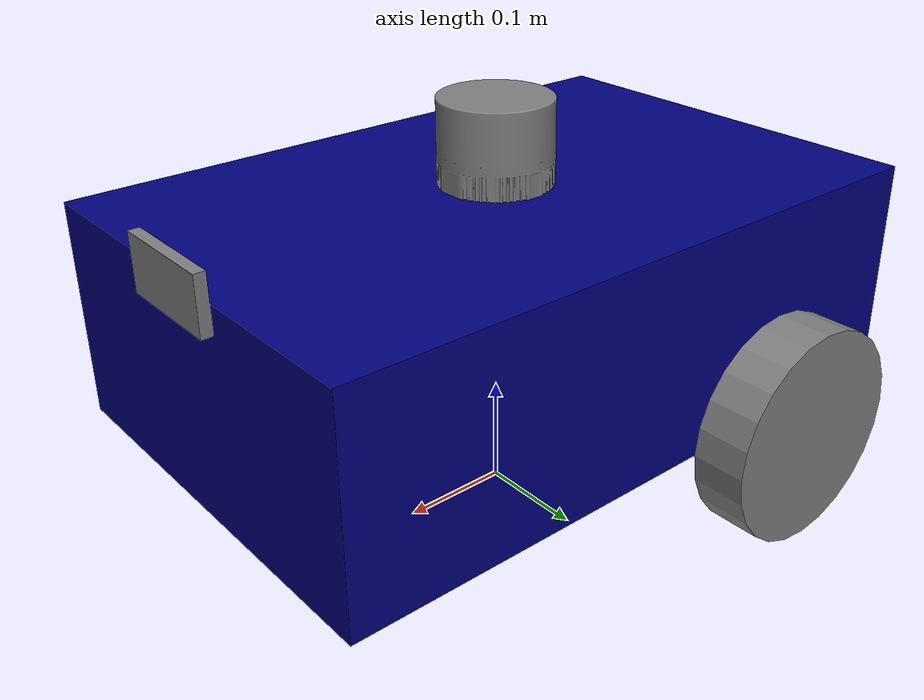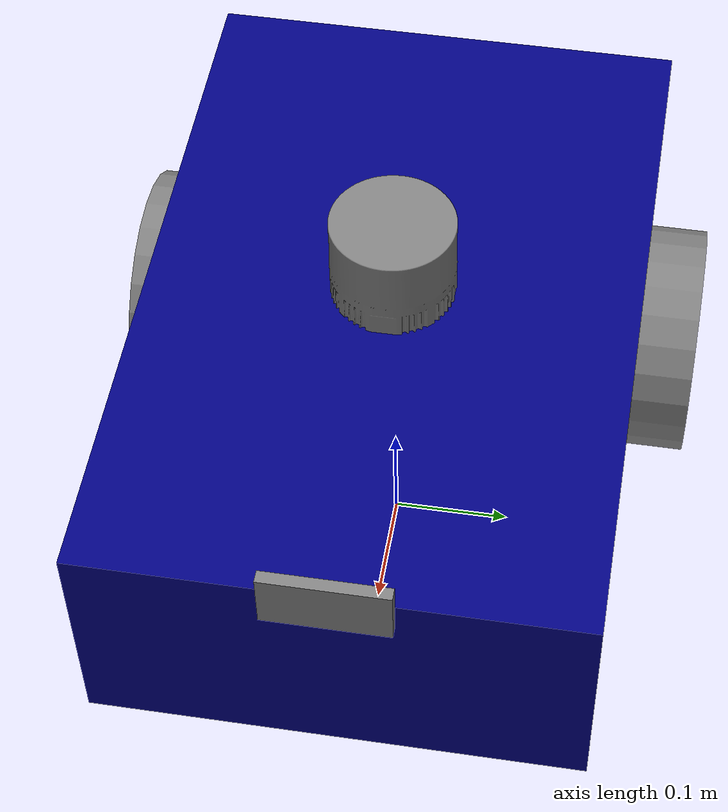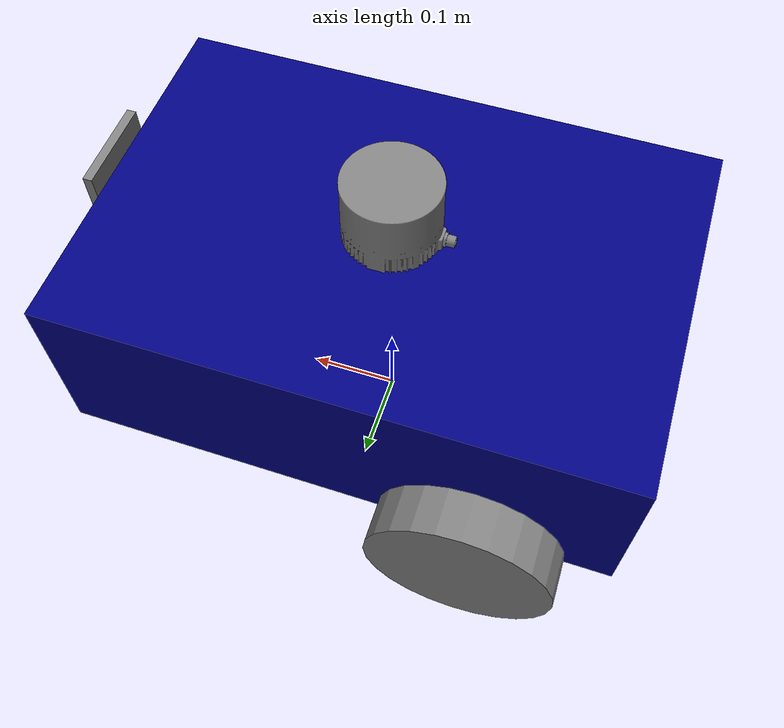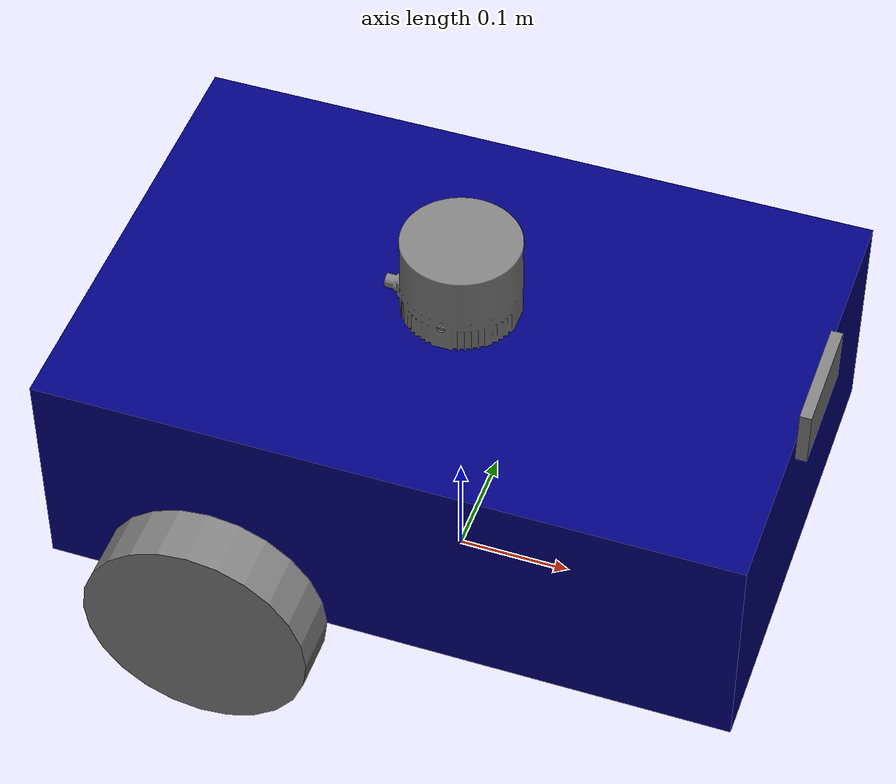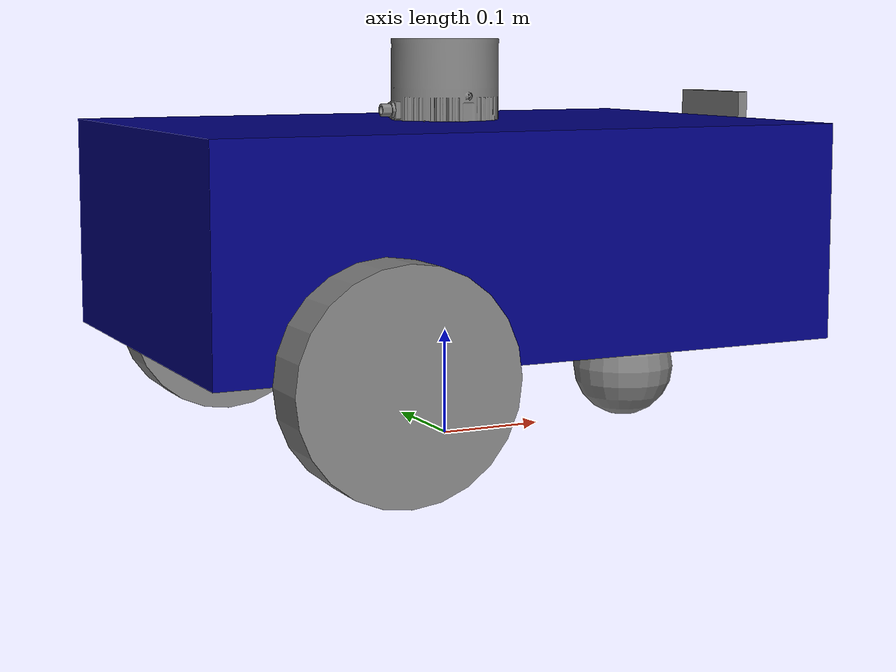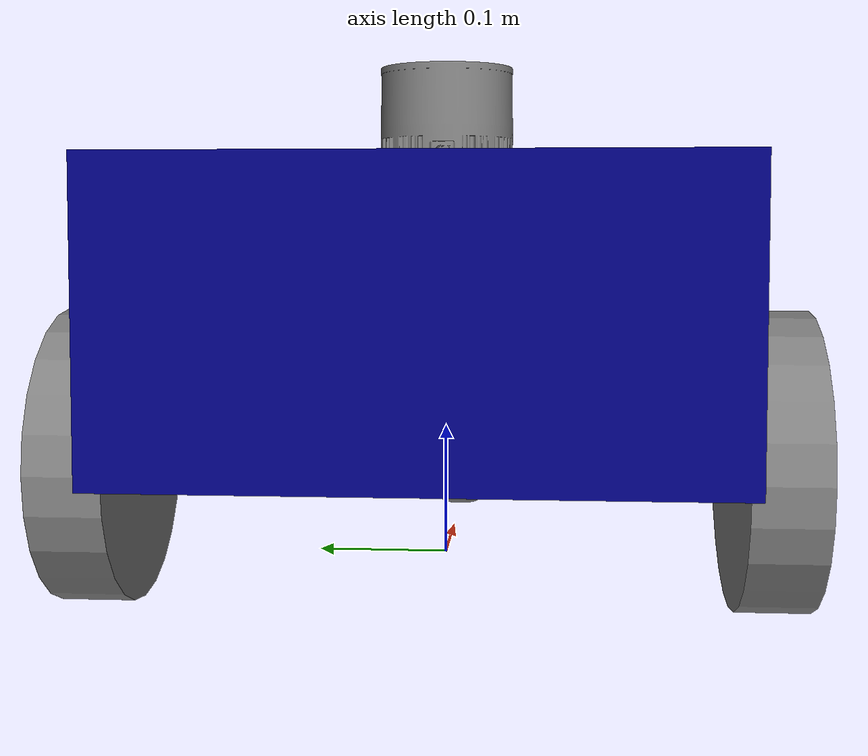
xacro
<?xml version="1.0"?>

<robot name="my_robot" xmlns:xacro="http://wwww.ros.org/wiki/xacro">

    <xacro:include filename="common_properties.xacro" />
    <xacro:include filename="mobile_base.xacro" />
    <xacro:include filename="mobile_base_gazebo.xacro" />
    <xacro:include filename="camera.xacro" />
    <xacro:include filename="lidar.xacro" />

</robot>

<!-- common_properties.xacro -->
<robot xmlns:xacro="http://www.ros.org/wiki/xacro" >

    <material name="blue">
        <color rgba="0 0 0.5 1" />
    </material>

    <material name="grey">
        <color rgba="0.5 0.5 0.5 1" />
    </material>

    <material name="orange">
        <color rgba="1.0 0.5 0 1" />
    </material>

    <material name="yellow" >
        <color rgba="1.0 1.0 0 1" />
    </material>

    <xacro:macro name="box_inertia" params="m l w h xyz rpy" >
        <inertial>
            <origin xyz="${xyz}" rpy="${rpy}"  />
            <mass value="${m}" />
            <inertia ixx="${(m/12)*(h*h + l*l)}" ixy="0" ixz="0"
                     iyy="${(m/12)*(w*w + h*h)}" iyz="0" izz="${(m/12)*(w*w + l*l)}" />
        </inertial>
    </xacro:macro>

    <xacro:macro name="wheel_inertia" params="m r h xyz rpy">
        <inertial>
            <origin xyz="${xyz}" rpy="${rpy}" />
            <mass value="${m}" />
            <inertia ixx="${(m/12)*(3*r*r + h*h)}" ixy="0" ixz="0"
                     iyy="${(m/12)*(3*r*r + h*h)}" iyz="0" izz="${((m*r*r)/2)}" />
        </inertial>
    </xacro:macro>

    <xacro:macro name="castor_wheel_inertia" params="m r xyz rpy">
        <inertial>
            <origin xyz="${xyz}" rpy="${rpy}" />
            <mass value="${m}" />
            <inertia ixx="${(2/5)*m*r*r}" ixy="0" ixz="0"
                     iyy="${(2/5)*m*r*r}" iyz="0" izz="${(2/5)*m*r*r}" />
        </inertial>
    </xacro:macro>

</robot>

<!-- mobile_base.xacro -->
<robot xmlns:xacro="http://www.ros.org/wiki/xacro" >

    <xacro:property name="base_length" value="0.6" />
    <xacro:property name="base_width" value="0.4" />
    <xacro:property name="base_height" value="0.2" />
    <xacro:property name="wheel_radius" value="0.1" />
    <xacro:property name="wheel_length" value="0.05" />
    <xacro:property name="scan_wheel_length" value="0.06" />
    <xacro:property name="imu_length" value="0.05" />

    <link name="base_footprint" />

    <!-- BASE LINK -->
    <link name="base_link">
        <visual>
            <geometry>
                <box size="${base_length} ${base_width} ${base_height}"/>
            </geometry>
            <origin xyz="0 0 0.1" rpy="0 0 0" />
            <material name="blue" />
        </visual>
        <collision>
            <geometry>
                <box size="${base_length} ${base_width} ${base_height}"/>
            </geometry>
            <origin xyz="0 0 0.1" rpy="0 0 0" />
        </collision>
        <xacro:box_inertia m="5.0" l="${3*base_length}" w="${3*base_width}" h="${3*base_height}"
                           xyz="0 0 0.1" rpy="0 0 0" />
    </link>

    <!-- DEFINE THE IMU LINK  -->
    <link name= "imu_link" >
        <visual>
            <geometry>
                <box size="0.05 0.05 0.05"/>
            </geometry>
            <origin xyz="0 0 0" rpy="0 0 0" />
            <material name="orange"/>
        </visual>
        <collision>
            <geometry>
                <box size="${imu_length} ${imu_length} ${imu_length}" />
            </geometry>
            <origin xyz="0 0 0.15   " rpy="0 0 0"/>
        </collision>
        <xacro:box_inertia m="0.25" l="${2*imu_length}" w="${2*imu_length}" h="${2*imu_length}"
                           xyz="0 0 0.1" rpy="0 0 0" />
    </link>

    <!-- To add Lidar JOint  -->

    <!-- WHEEL LINK -->
    <xacro:macro name="wheel_link" params="prefix">
        <link name="${prefix}_wheel_link">
            <visual>
                <geometry>
                    <cylinder radius="${wheel_radius}" length="${wheel_length}" />
                </geometry>
                <origin xyz="0 0 0" rpy="${pi / 2.0} 0 0" />
                <material name="grey" />
            </visual>
            <collision>
                <geometry>
                    <cylinder radius="${wheel_radius}" length="${wheel_length}" />
                </geometry>
                <origin xyz="0 0 0" rpy="${pi / 2.0} 0 0" />
            </collision>
            <xacro:wheel_inertia m="1.0" r="${3*wheel_radius}" h="${3*wheel_length}"
                                 xyz="0 0 0" rpy="${pi / 2.0} 0 0" />
        </link>
    </xacro:macro>

    <xacro:wheel_link prefix="right"/>
    <xacro:wheel_link prefix="left" />

    <link name="caster_wheel_link">
        <visual>
            <geometry>
                <sphere radius="${wheel_length}" />
            </geometry>
            <origin xyz="0 0 0" rpy="0 0 0"/>
            <material name="grey" />
        </visual>
        <collision>
            <geometry>
                <sphere radius="${wheel_length}" />
            </geometry>
            <origin xyz="0 0 0" rpy="0 0 0"/>
        </collision>
        <xacro:castor_wheel_inertia m="0.5" r="${3*wheel_length}"
                                    xyz="0 0 0" rpy="0 0 0" />
    </link>

    <joint name="base_joint" type="fixed">
        <parent link="base_footprint" />
        <child link="base_link" />
        <origin xyz="0 0 ${wheel_radius}" rpy="0 0 0" />
    </joint>

    <joint name="base_right_wheel_joint" type="continuous">
        <parent link="base_link" />
        <child link="right_wheel_link" />
        <origin xyz="${-base_length / 4.0} ${-(base_width + wheel_length) / 2.0} 0" rpy="0 0 0" />
        <axis xyz="0 1 0" />
    </joint>

    <joint name="base_left_wheel_joint" type="continuous">
        <parent link="base_link" />
        <child link="left_wheel_link" />
        <origin xyz="${-base_length / 4.0} ${(base_width + wheel_length) / 2.0} 0" rpy="0 0 0" />
        <axis xyz="0 1 0" />
    </joint>

    <joint name="base_caster_wheel_joint" type="fixed" >
        <parent link="base_link" />
        <child link="caster_wheel_link" />
        <origin xyz="${base_length / 3.0} 0 ${-wheel_length}" rpy="0 0 0"/>
        <axis xyz="0 1 0"/>
    </joint>

    <joint name="base_imu_link" type="fixed">
        <parent link="base_link" />
        <child link="imu_link"/>
        <origin xyz="0 0 0.15" rpy="0 0 0" />
    </joint>

</robot>

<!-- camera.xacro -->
<robot xmlns:xacro="http://www.ros.org/wiki/xacro" >

    <xacro:property name="camera_length" value="0.01" />
    <xacro:property name="camera_width" value="0.1" />
    <xacro:property name="camera_height" value="0.05" />

    <link name="camera_link">
        <visual>
            <geometry>
                <box size="${camera_length} ${camera_width} ${camera_height}" />
            </geometry>
            <material name="grey" />
        </visual>
        <collision>
            <geometry>
                <box size="${camera_length} ${camera_width} ${camera_height}" />
            </geometry>
        </collision>
        <xacro:box_inertia m="0.1" l="${camera_length}" w="${camera_width}" h="${camera_height}"
                           xyz="0 0 0" rpy="0 0 0" />
    </link>

    <joint name="base_camera_joint" type="fixed">
        <parent link="base_link" />
        <child link="camera_link" />
        <origin xyz="${(camera_length + base_length)/2} 0 ${base_height}" rpy="0 0 0" />
    </joint>

    <link name="camera_link_optical">
    </link>

    <joint name="camera_optical_joint" type="fixed">
        <parent link="camera_link" />
        <child link="camera_link_optical" />
        <origin xyz="0 0 0" rpy="${-pi/2} 0 ${-pi/2}" />
    </joint>

    <gazebo reference="camera_link">
        <material>Gazebo/Red</material>
        <sensor name="camera" type="camera">
            <pose>0 0 0 0 0 0</pose>
            <always_on>true</always_on>
            <visualize>true</visualize>
            <update_rate>10.0</update_rate>
            <topic>camera/image_raw</topic>
            <camera>
                <horizontal_fov>1.3962634</horizontal_fov>
                <image>
                    <width>640</width>
                    <height>480</height>
                    <format>R8G8B8</format>
                </image>
                <clip>
                    <near>0.1</near>
                    <far>15</far>
                </clip>
                <noise>
                    <type>gaussian</type>
                    <mean>0.0</mean>
                    <stddev>0.007</stddev>
                </noise>
                <optical_frame_id>camera_link</optical_frame_id>
                <camera_info_topic>camera/camera_info</camera_info_topic>
            </camera>
        </sensor>
    </gazebo>

</robot>

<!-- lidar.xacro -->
<robot xmlns:xacro="http://www.ros.org/wiki/xacro">

    <xacro:property name="laser_radius" value="0.1" />
    <xacro:property name="laser_height" value="0.076" />
    <xacro:property name="laser_mass" value="0.74" />

    <xacro:macro name="lidar_sensor" params="mesh_file">
        <link name="lidar_link">
            <visual>
                <geometry>
                    <mesh filename="${mesh_file}" scale="0.001 0.001 0.001" />
                </geometry>
                <origin xyz="0 0 0" rpy="0 0 -${pi / 2.0}"/>
                <material name="grey" />
            </visual>
            <collision>
                <geometry>
                    <mesh filename="${mesh_file}" scale="0.001 0.001 0.001" />
                </geometry>
                <origin xyz="0 0 0" rpy="0 0 -${pi / 2.0}"/>
                <material name="grey" />
            </collision>
            <xacro:wheel_inertia m="${laser_mass}" r="${laser_radius}" h="${laser_height}"
                                 xyz="0 0 0" rpy="0 0 0"  />
        </link>
    </xacro:macro>

    <xacro:lidar_sensor mesh_file="file://$(find amr_description)/meshes/C16_V5.stl" />

    <joint name="base_lidar_joint" type="fixed" >
        <parent link="base_link" />
        <child link="lidar_link" />
        <origin xyz="0 0 0.25" rpy="0 0 0" />
    </joint>

    <gazebo reference="lidar_link">
        <sensor name="laser" type="gpu_lidar">
            <pose> 0 0 0 0 0 0 </pose>
            <topic>scan</topic>
            <visualize>true</visualize>
            <update_rate>10</update_rate>
            <always_on>true</always_on>
            <lidar>
                <scan>
                    <horizontal>
                        <samples>720</samples>
                        <resolution>1</resolution>
                        <min_angle>-3.14</min_angle>
                        <max_angle>3.14</max_angle>
                    </horizontal>
                </scan>
                <range>
                    <min>0.1</min>
                    <max>12</max>
                    <resolution>0.01</resolution>
                </range>
            </lidar>
        </sensor>
    </gazebo>

</robot>
